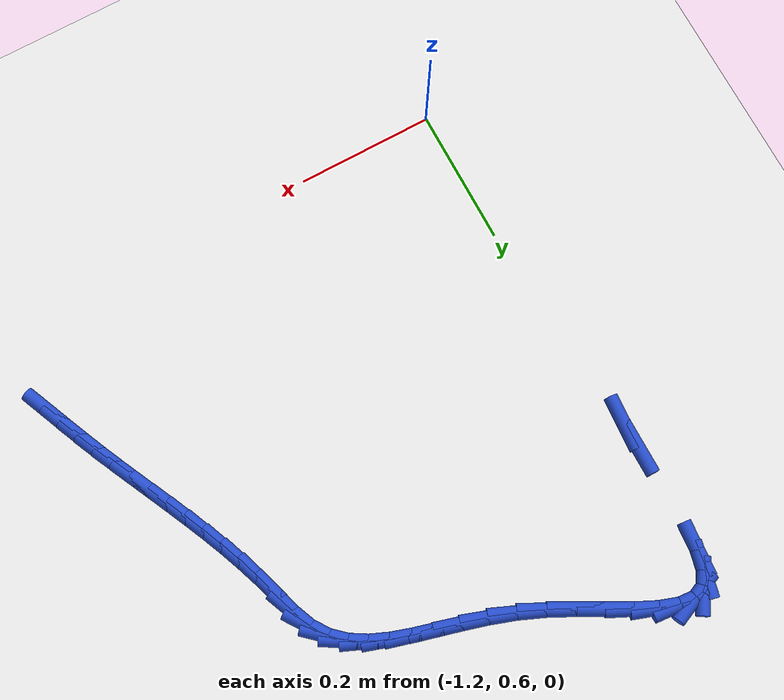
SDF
<sdf version="1.6">
 <world name="default">
  <model name="ground_plane">
   <static>1</static>
   <link name="link">
    <collision name="collision">
     <geometry><plane><normal>0 0 1</normal><size>100 100</size></plane></geometry>
     <surface><friction><ode><mu>100</mu><mu2>50</mu2></ode></friction></surface>
    </collision>
    <visual name="visual">
     <cast_shadows>0</cast_shadows>
     <geometry><plane><normal>0 0 1</normal><size>100 100</size></plane></geometry>
     <material>
      <script><uri>file://media/materials/scripts/gazebo.material</uri><name>Gazebo/WhiteGlow</name></script>
     </material>
    </visual>
   </link>
  </model>
  <model name="line">
   <link name="link_31">
    <pose>-0.5361278923505571 0.7322679319617976 0.01 0 1.57 -1.1676783106452504</pose>
    <collision name="collision">
     <geometry><cylinder><radius>0.01</radius><length>0.08</length></cylinder></geometry>
    </collision>
    <visual name="visual">
     <material>
      <script><name>Gazebo/Blue</name><uri>file://media/materials/scripts/gazebo.material</uri></script>
     </material>
     <geometry><cylinder><radius>0.01</radius><length>0.08</length></cylinder></geometry>
    </visual>
   </link>
   <link name="link_32">
    <pose>-0.5484861879099345 0.7612458094097831 0.01 0 1.57 -1.164250215678161</pose>
    <collision name="collision">
     <geometry><cylinder><radius>0.01</radius><length>0.08</length></cylinder></geometry>
    </collision>
    <visual name="visual">
     <material>
      <script><name>Gazebo/Blue</name><uri>file://media/materials/scripts/gazebo.material</uri></script>
     </material>
     <geometry><cylinder><radius>0.01</radius><length>0.08</length></cylinder></geometry>
    </visual>
   </link>
   <link name="link_33">
    <pose>-0.5608989344352014 0.7900770585471306 0.01 0 1.57 -1.15300546772476</pose>
    <collision name="collision">
     <geometry><cylinder><radius>0.01</radius><length>0.08</length></cylinder></geometry>
    </collision>
    <visual name="visual">
     <material>
      <script><name>Gazebo/Blue</name><uri>file://media/materials/scripts/gazebo.material</uri></script>
     </material>
     <geometry><cylinder><radius>0.01</radius><length>0.08</length></cylinder></geometry>
    </visual>
   </link>
   <link name="link_34">
    <pose>-0.5735603406411797 0.8185985280946925 0.01 0 1.57 -1.1373262863810127</pose>
    <collision name="collision">
     <geometry><cylinder><radius>0.01</radius><length>0.08</length></cylinder></geometry>
    </collision>
    <visual name="visual">
     <material>
      <script><name>Gazebo/Blue</name><uri>file://media/materials/scripts/gazebo.material</uri></script>
     </material>
     <geometry><cylinder><radius>0.01</radius><length>0.08</length></cylinder></geometry>
    </visual>
   </link>
   <link name="link_35">
    <pose>-0.5865765773410835 0.8467218197256773 0.01 0 1.57 -1.126359071277261</pose>
    <collision name="collision">
     <geometry><cylinder><radius>0.01</radius><length>0.08</length></cylinder></geometry>
    </collision>
    <visual name="visual">
     <material>
      <script><name>Gazebo/Blue</name><uri>file://media/materials/scripts/gazebo.material</uri></script>
     </material>
     <geometry><cylinder><radius>0.01</radius><length>0.08</length></cylinder></geometry>
    </visual>
   </link>
   <link name="link_36">
    <pose>-0.5998285972135813 0.8745497677548474 0.01 0 1.57 -1.1216978233604011</pose>
    <collision name="collision">
     <geometry><cylinder><radius>0.01</radius><length>0.08</length></cylinder></geometry>
    </collision>
    <visual name="visual">
     <material>
      <script><name>Gazebo/Blue</name><uri>file://media/materials/scripts/gazebo.material</uri></script>
     </material>
     <geometry><cylinder><radius>0.01</radius><length>0.08</length></cylinder></geometry>
    </visual>
   </link>
   <link name="link_37">
    <pose>-0.6131618508073494 0.9022153513434821 0.01 0 1.57 -1.1234362683984052</pose>
    <collision name="collision">
     <geometry><cylinder><radius>0.01</radius><length>0.08</length></cylinder></geometry>
    </collision>
    <visual name="visual">
     <material>
      <script><name>Gazebo/Blue</name><uri>file://media/materials/scripts/gazebo.material</uri></script>
     </material>
     <geometry><cylinder><radius>0.01</radius><length>0.08</length></cylinder></geometry>
    </visual>
   </link>
   <link name="link_38">
    <pose>-0.6264217886710648 0.9298515496528604 0.01 0 1.57 -1.1316016780983618</pose>
    <collision name="collision">
     <geometry><cylinder><radius>0.01</radius><length>0.08</length></cylinder></geometry>
    </collision>
    <visual name="visual">
     <material>
      <script><name>Gazebo/Blue</name><uri>file://media/materials/scripts/gazebo.material</uri></script>
     </material>
     <geometry><cylinder><radius>0.01</radius><length>0.08</length></cylinder></geometry>
    </visual>
   </link>
   <link name="link_39">
    <pose>-0.6394538613534049 0.9575913418442626 0.01 0 1.57 -1.1461516095344957</pose>
    <collision name="collision">
     <geometry><cylinder><radius>0.01</radius><length>0.08</length></cylinder></geometry>
    </collision>
    <visual name="visual">
     <material>
      <script><name>Gazebo/Blue</name><uri>file://media/materials/scripts/gazebo.material</uri></script>
     </material>
     <geometry><cylinder><radius>0.01</radius><length>0.08</length></cylinder></geometry>
    </visual>
   </link>
   <link name="link_40">
    <pose>-0.6521035194030462 0.9855677070789682 0.01 0 1.57 -1.1669647508998493</pose>
    <collision name="collision">
     <geometry><cylinder><radius>0.01</radius><length>0.08</length></cylinder></geometry>
    </collision>
    <visual name="visual">
     <material>
      <script><name>Gazebo/Blue</name><uri>file://media/materials/scripts/gazebo.material</uri></script>
     </material>
     <geometry><cylinder><radius>0.01</radius><length>0.08</length></cylinder></geometry>
    </visual>
   </link>
   <link name="link_41">
    <pose>-0.6642162133686661 1.013913624518257 0.01 0 1.57 -1.19382703794198</pose>
    <collision name="collision">
     <geometry><cylinder><radius>0.01</radius><length>0.08</length></cylinder></geometry>
    </collision>
    <visual name="visual">
     <material>
      <script><name>Gazebo/Blue</name><uri>file://media/materials/scripts/gazebo.material</uri></script>
     </material>
     <geometry><cylinder><radius>0.01</radius><length>0.08</length></cylinder></geometry>
    </visual>
   </link>
   <link name="link_42">
    <pose>-0.6756373937989412 1.042762073323408 0.01 0 1.57 -1.2264154750027942</pose>
    <collision name="collision">
     <geometry><cylinder><radius>0.01</radius><length>0.08</length></cylinder></geometry>
    </collision>
    <visual name="visual">
     <material>
      <script><name>Gazebo/Blue</name><uri>file://media/materials/scripts/gazebo.material</uri></script>
     </material>
     <geometry><cylinder><radius>0.01</radius><length>0.08</length></cylinder></geometry>
    </visual>
   </link>
   <link name="link_43">
    <pose>-0.6862125112425486 1.0722460326557008 0.01 0 1.57 -1.264243052041813</pose>
    <collision name="collision">
     <geometry><cylinder><radius>0.01</radius><length>0.08</length></cylinder></geometry>
    </collision>
    <visual name="visual">
     <material>
      <script><name>Gazebo/Blue</name><uri>file://media/materials/scripts/gazebo.material</uri></script>
     </material>
     <geometry><cylinder><radius>0.01</radius><length>0.08</length></cylinder></geometry>
    </visual>
   </link>
   <link name="link_44">
    <pose>-0.695788003755799 1.102497362797943 0.01 0 1.57 -1.277876940107387</pose>
    <collision name="collision">
     <geometry><cylinder><radius>0.01</radius><length>0.08</length></cylinder></geometry>
    </collision>
    <visual name="visual">
     <material>
      <script><name>Gazebo/Blue</name><uri>file://media/materials/scripts/gazebo.material</uri></script>
     </material>
     <geometry><cylinder><radius>0.01</radius><length>0.08</length></cylinder></geometry>
    </visual>
   </link>
   <link name="link_45">
    <pose>-0.7049351609405358 1.1328266435056273 0.01 0 1.57 -1.1804225111472426</pose>
    <collision name="collision">
     <geometry><cylinder><radius>0.01</radius><length>0.08</length></cylinder></geometry>
    </collision>
    <visual name="visual">
     <material>
      <script><name>Gazebo/Blue</name><uri>file://media/materials/scripts/gazebo.material</uri></script>
     </material>
     <geometry><cylinder><radius>0.01</radius><length>0.08</length></cylinder></geometry>
    </visual>
   </link>
   <link name="link_46">
    <pose>-0.7162294760239947 1.1602738749872568 0.01 0 1.57 -0.9624682290749637</pose>
    <collision name="collision">
     <geometry><cylinder><radius>0.01</radius><length>0.08</length></cylinder></geometry>
    </collision>
    <visual name="visual">
     <material>
      <script><name>Gazebo/Blue</name><uri>file://media/materials/scripts/gazebo.material</uri></script>
     </material>
     <geometry><cylinder><radius>0.01</radius><length>0.08</length></cylinder></geometry>
    </visual>
   </link>
   <link name="link_47">
    <pose>-0.7317511654336801 1.1825612822045959 0.01 0 1.57 -0.7318828029238305</pose>
    <collision name="collision">
     <geometry><cylinder><radius>0.01</radius><length>0.08</length></cylinder></geometry>
    </collision>
    <visual name="visual">
     <material>
      <script><name>Gazebo/Blue</name><uri>file://media/materials/scripts/gazebo.material</uri></script>
     </material>
     <geometry><cylinder><radius>0.01</radius><length>0.08</length></cylinder></geometry>
    </visual>
   </link>
   <link name="link_48">
    <pose>-0.7513926340298954 1.2002054875074784 0.01 0 1.57 -0.539981601670312</pose>
    <collision name="collision">
     <geometry><cylinder><radius>0.01</radius><length>0.08</length></cylinder></geometry>
    </collision>
    <visual name="visual">
     <material>
      <script><name>Gazebo/Blue</name><uri>file://media/materials/scripts/gazebo.material</uri></script>
     </material>
     <geometry><cylinder><radius>0.01</radius><length>0.08</length></cylinder></geometry>
    </visual>
   </link>
   <link name="link_49">
    <pose>-0.7746943410497866 1.2141726382161913 0.01 0 1.57 -0.4016380040006696</pose>
    <collision name="collision">
     <geometry><cylinder><radius>0.01</radius><length>0.08</length></cylinder></geometry>
    </collision>
    <visual name="visual">
     <material>
      <script><name>Gazebo/Blue</name><uri>file://media/materials/scripts/gazebo.material</uri></script>
     </material>
     <geometry><cylinder><radius>0.01</radius><length>0.08</length></cylinder></geometry>
    </visual>
   </link>
   <link name="link_50">
    <pose>-0.8011967457304994 1.2254288816510188 0.01 0 1.57 -0.31445846518207354</pose>
    <collision name="collision">
     <geometry><cylinder><radius>0.01</radius><length>0.08</length></cylinder></geometry>
    </collision>
    <visual name="visual">
     <material>
      <script><name>Gazebo/Blue</name><uri>file://media/materials/scripts/gazebo.material</uri></script>
     </material>
     <geometry><cylinder><radius>0.01</radius><length>0.08</length></cylinder></geometry>
    </visual>
   </link>
   <link name="link_51">
    <pose>-0.8304403073091797 1.2349403651322473 0.01 0 1.57 -0.27023632708271983</pose>
    <collision name="collision">
     <geometry><cylinder><radius>0.01</radius><length>0.08</length></cylinder></geometry>
    </collision>
    <visual name="visual">
     <material>
      <script><name>Gazebo/Blue</name><uri>file://media/materials/scripts/gazebo.material</uri></script>
     </material>
     <geometry><cylinder><radius>0.01</radius><length>0.08</length></cylinder></geometry>
    </visual>
   </link>
   <link name="link_52">
    <pose>-0.8619654850229735 1.2436732359801619 0.01 0 1.57 -0.2613806676420537</pose>
    <collision name="collision">
     <geometry><cylinder><radius>0.01</radius><length>0.08</length></cylinder></geometry>
    </collision>
    <visual name="visual">
     <material>
      <script><name>Gazebo/Blue</name><uri>file://media/materials/scripts/gazebo.material</uri></script>
     </material>
     <geometry><cylinder><radius>0.01</radius><length>0.08</length></cylinder></geometry>
    </visual>
   </link>
   <link name="link_53">
    <pose>-0.8953127381090266 1.252593641515048 0.01 0 1.57 -0.282476630890794</pose>
    <collision name="collision">
     <geometry><cylinder><radius>0.01</radius><length>0.08</length></cylinder></geometry>
    </collision>
    <visual name="visual">
     <material>
      <script><name>Gazebo/Blue</name><uri>file://media/materials/scripts/gazebo.material</uri></script>
     </material>
     <geometry><cylinder><radius>0.01</radius><length>0.08</length></cylinder></geometry>
    </visual>
   </link>
   <link name="link_54">
    <pose>-0.9300225258044843 1.262667729057191 0.01 0 1.57 -0.3298907648950737</pose>
    <collision name="collision">
     <geometry><cylinder><radius>0.01</radius><length>0.08</length></cylinder></geometry>
    </collision>
    <visual name="visual">
     <material>
      <script><name>Gazebo/Blue</name><uri>file://media/materials/scripts/gazebo.material</uri></script>
     </material>
     <geometry><cylinder><radius>0.01</radius><length>0.08</length></cylinder></geometry>
    </visual>
   </link>
   <link name="link_55">
    <pose>-0.9656353073464934 1.274861645926877 0.01 0 1.57 -0.40020855072597794</pose>
    <collision name="collision">
     <geometry><cylinder><radius>0.01</radius><length>0.08</length></cylinder></geometry>
    </collision>
    <visual name="visual">
     <material>
      <script><name>Gazebo/Blue</name><uri>file://media/materials/scripts/gazebo.material</uri></script>
     </material>
     <geometry><cylinder><radius>0.01</radius><length>0.08</length></cylinder></geometry>
    </visual>
   </link>
   <link name="link_56">
    <pose>-1.0016879356569826 1.2901133162944067 0.01 0 1.57 -0.4657508349254639</pose>
    <collision name="collision">
     <geometry><cylinder><radius>0.01</radius><length>0.08</length></cylinder></geometry>
    </collision>
    <visual name="visual">
     <material>
      <script><name>Gazebo/Blue</name><uri>file://media/materials/scripts/gazebo.material</uri></script>
     </material>
     <geometry><cylinder><radius>0.01</radius><length>0.08</length></cylinder></geometry>
    </visual>
   </link>
   <link name="link_57">
    <pose>-1.0375618902829367 1.308144706821995 0.01 0 1.57 -0.496324210705304</pose>
    <collision name="collision">
     <geometry><cylinder><radius>0.01</radius><length>0.08</length></cylinder></geometry>
    </collision>
    <visual name="visual">
     <material>
      <script><name>Gazebo/Blue</name><uri>file://media/materials/scripts/gazebo.material</uri></script>
     </material>
     <geometry><cylinder><radius>0.01</radius><length>0.08</length></cylinder></geometry>
    </visual>
   </link>
   <link name="link_58">
    <pose>-1.0724275674105406 1.3270258383510802 0.01 0 1.57 -0.4917506383574382</pose>
    <collision name="collision">
     <geometry><cylinder><radius>0.01</radius><length>0.08</length></cylinder></geometry>
    </collision>
    <visual name="visual">
     <material>
      <script><name>Gazebo/Blue</name><uri>file://media/materials/scripts/gazebo.material</uri></script>
     </material>
     <geometry><cylinder><radius>0.01</radius><length>0.08</length></cylinder></geometry>
    </visual>
   </link>
   <link name="link_59">
    <pose>-1.1054402859281611 1.3447087362590178 0.01 0 1.57 -0.44444442808521467</pose>
    <collision name="collision">
     <geometry><cylinder><radius>0.01</radius><length>0.08</length></cylinder></geometry>
    </collision>
    <visual name="visual">
     <material>
      <script><name>Gazebo/Blue</name><uri>file://media/materials/scripts/gazebo.material</uri></script>
     </material>
     <geometry><cylinder><radius>0.01</radius><length>0.08</length></cylinder></geometry>
    </visual>
   </link>
   <link name="link_60">
    <pose>-1.1357553647241658 1.3591454259231626 0.01 0 1.57 -0.3290694122734987</pose>
    <collision name="collision">
     <geometry><cylinder><radius>0.01</radius><length>0.08</length></cylinder></geometry>
    </collision>
    <visual name="visual">
     <material>
      <script><name>Gazebo/Blue</name><uri>file://media/materials/scripts/gazebo.material</uri></script>
     </material>
     <geometry><cylinder><radius>0.01</radius><length>0.08</length></cylinder></geometry>
    </visual>
   </link>
   <link name="link_61">
    <pose>-1.1625281226869217 1.3682879327208701 0.01 0 1.57 -0.08025115382690062</pose>
    <collision name="collision">
     <geometry><cylinder><radius>0.01</radius><length>0.08</length></cylinder></geometry>
    </collision>
    <visual name="visual">
     <material>
      <script><name>Gazebo/Blue</name><uri>file://media/materials/scripts/gazebo.material</uri></script>
     </material>
     <geometry><cylinder><radius>0.01</radius><length>0.08</length></cylinder></geometry>
    </visual>
   </link>
   <link name="link_62">
    <pose>-1.184913878704796 1.3700882820294964 0.01 0 1.57 0.416555840489086</pose>
    <collision name="collision">
     <geometry><cylinder><radius>0.01</radius><length>0.08</length></cylinder></geometry>
    </collision>
    <visual name="visual">
     <material>
      <script><name>Gazebo/Blue</name><uri>file://media/materials/scripts/gazebo.material</uri></script>
     </material>
     <geometry><cylinder><radius>0.01</radius><length>0.08</length></cylinder></geometry>
    </visual>
   </link>
   <link name="link_63">
    <pose>-1.2020679516661559 1.3624984992263964 0.01 0 1.57 1.0133230450220734</pose>
    <collision name="collision">
     <geometry><cylinder><radius>0.01</radius><length>0.08</length></cylinder></geometry>
    </collision>
    <visual name="visual">
     <material>
      <script><name>Gazebo/Blue</name><uri>file://media/materials/scripts/gazebo.material</uri></script>
     </material>
     <geometry><cylinder><radius>0.01</radius><length>0.08</length></cylinder></geometry>
    </visual>
   </link>
   <link name="link_64">
    <pose>-1.2134846195698843 1.344185982195421 0.01 0 1.57 1.3373936952782557</pose>
    <collision name="collision">
     <geometry><cylinder><radius>0.01</radius><length>0.08</length></cylinder></geometry>
    </collision>
    <visual name="visual">
     <material>
      <script><name>Gazebo/Blue</name><uri>file://media/materials/scripts/gazebo.material</uri></script>
     </material>
     <geometry><cylinder><radius>0.01</radius><length>0.08</length></cylinder></geometry>
    </visual>
   </link>
   <link name="link_65">
    <pose>-1.220020562138749 1.3166934748602017 0.01 0 1.57 1.4880343592978684</pose>
    <collision name="collision">
     <geometry><cylinder><radius>0.01</radius><length>0.08</length></cylinder></geometry>
    </collision>
    <visual name="visual">
     <material>
      <script><name>Gazebo/Blue</name><uri>file://media/materials/scripts/gazebo.material</uri></script>
     </material>
     <geometry><cylinder><radius>0.01</radius><length>0.08</length></cylinder></geometry>
    </visual>
   </link>
   <link name="link_69">
    <pose>-1.2213356673603661 1.1602247663875105 0.01 0 1.57 1.5678468852817549</pose>
    <collision name="collision">
     <geometry><cylinder><radius>0.01</radius><length>0.08</length></cylinder></geometry>
    </collision>
    <visual name="visual">
     <material>
      <script><name>Gazebo/Blue</name><uri>file://media/materials/scripts/gazebo.material</uri></script>
     </material>
     <geometry><cylinder><radius>0.01</radius><length>0.08</length></cylinder></geometry>
    </visual>
   </link>
   <link name="link_70">
    <pose>-1.2214519244795632 1.1208082254715424 0.01 0 1.57 1.5015165078537378</pose>
    <collision name="collision">
     <geometry><cylinder><radius>0.01</radius><length>0.08</length></cylinder></geometry>
    </collision>
    <visual name="visual">
     <material>
      <script><name>Gazebo/Blue</name><uri>file://media/materials/scripts/gazebo.material</uri></script>
     </material>
     <geometry><cylinder><radius>0.01</radius><length>0.08</length></cylinder></geometry>
    </visual>
   </link>
  </model>
 </world>
</sdf>
